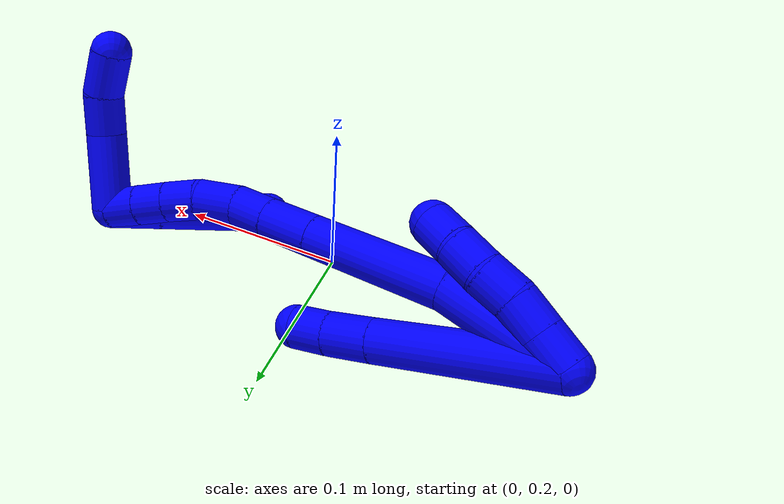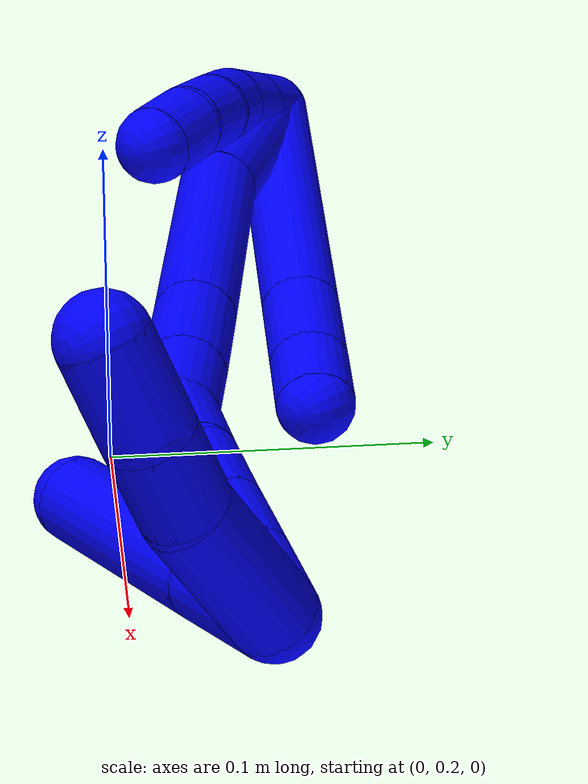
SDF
<sdf version="1.7">
 <world name="default">
  <model name="1">
   <static>0</static>
   <link name="1">
    <collision name="collision-cylinder-e_1_2_8">
     <pose>0.039856 -0.010253 -0.030038 2.81266 0.898281 2.47837</pose>
     <geometry><cylinder><radius>0.0125</radius><length>0.1019</length></cylinder></geometry>
     <surface>
      <friction><ode><mu>1.16</mu><mu2>1.16</mu2><slip1>0</slip1><slip2>0</slip2></ode></friction>
      <contact><ode><kp>1e+06</kp><kd>1</kd><max_vel>0</max_vel><min_depth>0.001</min_depth></ode></contact>
     </surface>
    </collision>
    <visual name="visual-cylinder-e_1_2_8">
     <pose>0.039856 -0.010253 -0.030038 2.81266 0.898281 2.47837</pose>
     <geometry><cylinder><radius>0.0125</radius><length>0.1019</length></cylinder></geometry>
     <material><ambient>0 0 1 1</ambient></material>
    </visual>
    <collision name="collision-cylinder-e_2_8_9">
     <pose>0.090175 -0.023431 -0.068098 2.79196 0.886331 2.42915</pose>
     <geometry><cylinder><radius>0.0125</radius><length>0.027009</length></cylinder></geometry>
     <surface>
      <friction><ode><mu>1.16</mu><mu2>1.16</mu2><slip1>0</slip1><slip2>0</slip2></ode></friction>
      <contact><ode><kp>1e+06</kp><kd>1</kd><max_vel>0</max_vel><min_depth>0.001</min_depth></ode></contact>
     </surface>
    </collision>
    <visual name="visual-cylinder-e_2_8_9">
     <pose>0.090175 -0.023431 -0.068098 2.79196 0.886331 2.42915</pose>
     <geometry><cylinder><radius>0.0125</radius><length>0.027009</length></cylinder></geometry>
     <material><ambient>0 0 1 1</ambient></material>
    </visual>
    <collision name="collision-cylinder-e_3_9_6">
     <pose>0.10848 -0.029198 -0.082572 2.72666 0.838524 2.25911</pose>
     <geometry><cylinder><radius>0.0125</radius><length>0.021091</length></cylinder></geometry>
     <surface>
      <friction><ode><mu>1.16</mu><mu2>1.16</mu2><slip1>0</slip1><slip2>0</slip2></ode></friction>
      <contact><ode><kp>1e+06</kp><kd>1</kd><max_vel>0</max_vel><min_depth>0.001</min_depth></ode></contact>
     </surface>
    </collision>
    <visual name="visual-cylinder-e_3_9_6">
     <pose>0.10848 -0.029198 -0.082572 2.72666 0.838524 2.25911</pose>
     <geometry><cylinder><radius>0.0125</radius><length>0.021091</length></cylinder></geometry>
     <material><ambient>0 0 1 1</ambient></material>
    </visual>
    <collision name="collision-cylinder-e_1_2_10">
     <pose>0.000831 -0.005273 -0.008456 2.58401 0.083176 0.288722</pose>
     <geometry><cylinder><radius>0.0125</radius><length>0.02</length></cylinder></geometry>
     <surface>
      <friction><ode><mu>1.16</mu><mu2>1.16</mu2><slip1>0</slip1><slip2>0</slip2></ode></friction>
      <contact><ode><kp>1e+06</kp><kd>1</kd><max_vel>0</max_vel><min_depth>0.001</min_depth></ode></contact>
     </surface>
    </collision>
    <visual name="visual-cylinder-e_1_2_10">
     <pose>0.000831 -0.005273 -0.008456 2.58401 0.083176 0.288722</pose>
     <geometry><cylinder><radius>0.0125</radius><length>0.02</length></cylinder></geometry>
     <material><ambient>0 0 1 1</ambient></material>
    </visual>
    <collision name="collision-cylinder-e_2_10_11">
     <pose>0.002433 -0.015862 -0.025347 2.5792 0.077188 0.265785</pose>
     <geometry><cylinder><radius>0.0125</radius><length>0.02</length></cylinder></geometry>
     <surface>
      <friction><ode><mu>1.16</mu><mu2>1.16</mu2><slip1>0</slip1><slip2>0</slip2></ode></friction>
      <contact><ode><kp>1e+06</kp><kd>1</kd><max_vel>0</max_vel><min_depth>0.001</min_depth></ode></contact>
     </surface>
    </collision>
    <visual name="visual-cylinder-e_2_10_11">
     <pose>0.002433 -0.015862 -0.025347 2.5792 0.077188 0.265785</pose>
     <geometry><cylinder><radius>0.0125</radius><length>0.02</length></cylinder></geometry>
     <material><ambient>0 0 1 1</ambient></material>
    </visual>
    <collision name="collision-cylinder-e_3_11_12">
     <pose>0.005907 -0.026159 -0.042021 2.59793 0.273745 0.91791</pose>
     <geometry><cylinder><radius>0.0125</radius><length>0.02</length></cylinder></geometry>
     <surface>
      <friction><ode><mu>1.16</mu><mu2>1.16</mu2><slip1>0</slip1><slip2>0</slip2></ode></friction>
      <contact><ode><kp>1e+06</kp><kd>1</kd><max_vel>0</max_vel><min_depth>0.001</min_depth></ode></contact>
     </surface>
    </collision>
    <visual name="visual-cylinder-e_3_11_12">
     <pose>0.005907 -0.026159 -0.042021 2.59793 0.273745 0.91791</pose>
     <geometry><cylinder><radius>0.0125</radius><length>0.02</length></cylinder></geometry>
     <material><ambient>0 0 1 1</ambient></material>
    </visual>
    <collision name="collision-cylinder-e_4_12_13">
     <pose>0.010913 -0.034631 -0.059344 2.77456 0.232372 1.12267</pose>
     <geometry><cylinder><radius>0.0125</radius><length>0.02</length></cylinder></geometry>
     <surface>
      <friction><ode><mu>1.16</mu><mu2>1.16</mu2><slip1>0</slip1><slip2>0</slip2></ode></friction>
      <contact><ode><kp>1e+06</kp><kd>1</kd><max_vel>0</max_vel><min_depth>0.001</min_depth></ode></contact>
     </surface>
    </collision>
    <visual name="visual-cylinder-e_4_12_13">
     <pose>0.010913 -0.034631 -0.059344 2.77456 0.232372 1.12267</pose>
     <geometry><cylinder><radius>0.0125</radius><length>0.02</length></cylinder></geometry>
     <material><ambient>0 0 1 1</ambient></material>
    </visual>
    <collision name="collision-cylinder-e_5_13_5">
     <pose>0.015724 -0.039882 -0.077946 2.95891 0.253521 1.89521</pose>
     <geometry><cylinder><radius>0.0125</radius><length>0.02</length></cylinder></geometry>
     <surface>
      <friction><ode><mu>1.16</mu><mu2>1.16</mu2><slip1>0</slip1><slip2>0</slip2></ode></friction>
      <contact><ode><kp>1e+06</kp><kd>1</kd><max_vel>0</max_vel><min_depth>0.001</min_depth></ode></contact>
     </surface>
    </collision>
    <visual name="visual-cylinder-e_5_13_5">
     <pose>0.015724 -0.039882 -0.077946 2.95891 0.253521 1.89521</pose>
     <geometry><cylinder><radius>0.0125</radius><length>0.02</length></cylinder></geometry>
     <material><ambient>0 0 1 1</ambient></material>
    </visual>
    <collision name="collision-cylinder-e_1_2_14">
     <pose>0.015461 -0.011699 -0.030374 2.77393 0.443437 1.76223</pose>
     <geometry><cylinder><radius>0.0125</radius><length>0.072069</length></cylinder></geometry>
     <surface>
      <friction><ode><mu>1.16</mu><mu2>1.16</mu2><slip1>0</slip1><slip2>0</slip2></ode></friction>
      <contact><ode><kp>1e+06</kp><kd>1</kd><max_vel>0</max_vel><min_depth>0.001</min_depth></ode></contact>
     </surface>
    </collision>
    <visual name="visual-cylinder-e_1_2_14">
     <pose>0.015461 -0.011699 -0.030374 2.77393 0.443437 1.76223</pose>
     <geometry><cylinder><radius>0.0125</radius><length>0.072069</length></cylinder></geometry>
     <material><ambient>0 0 1 1</ambient></material>
    </visual>
    <collision name="collision-cylinder-e_2_14_15">
     <pose>0.056139 -0.037064 -0.091601 2.72463 0.641791 2.00797</pose>
     <geometry><cylinder><radius>0.0125</radius><length>0.08425</length></cylinder></geometry>
     <surface>
      <friction><ode><mu>1.16</mu><mu2>1.16</mu2><slip1>0</slip1><slip2>0</slip2></ode></friction>
      <contact><ode><kp>1e+06</kp><kd>1</kd><max_vel>0</max_vel><min_depth>0.001</min_depth></ode></contact>
     </surface>
    </collision>
    <visual name="visual-cylinder-e_2_14_15">
     <pose>0.056139 -0.037064 -0.091601 2.72463 0.641791 2.00797</pose>
     <geometry><cylinder><radius>0.0125</radius><length>0.08425</length></cylinder></geometry>
     <material><ambient>0 0 1 1</ambient></material>
    </visual>
    <collision name="collision-cylinder-e_3_15_16">
     <pose>0.090886 -0.055781 -0.134206 2.73572 0.640292 2.03071</pose>
     <geometry><cylinder><radius>0.0125</radius><length>0.031904</length></cylinder></geometry>
     <surface>
      <friction><ode><mu>1.16</mu><mu2>1.16</mu2><slip1>0</slip1><slip2>0</slip2></ode></friction>
      <contact><ode><kp>1e+06</kp><kd>1</kd><max_vel>0</max_vel><min_depth>0.001</min_depth></ode></contact>
     </surface>
    </collision>
    <visual name="visual-cylinder-e_3_15_16">
     <pose>0.090886 -0.055781 -0.134206 2.73572 0.640292 2.03071</pose>
     <geometry><cylinder><radius>0.0125</radius><length>0.031904</length></cylinder></geometry>
     <material><ambient>0 0 1 1</ambient></material>
    </visual>
    <collision name="collision-cylinder-e_4_16_17">
     <pose>0.107459 -0.064747 -0.154901 2.72882 0.624962 1.99156</pose>
     <geometry><cylinder><radius>0.0125</radius><length>0.024073</length></cylinder></geometry>
     <surface>
      <friction><ode><mu>1.16</mu><mu2>1.16</mu2><slip1>0</slip1><slip2>0</slip2></ode></friction>
      <contact><ode><kp>1e+06</kp><kd>1</kd><max_vel>0</max_vel><min_depth>0.001</min_depth></ode></contact>
     </surface>
    </collision>
    <visual name="visual-cylinder-e_4_16_17">
     <pose>0.107459 -0.064747 -0.154901 2.72882 0.624962 1.99156</pose>
     <geometry><cylinder><radius>0.0125</radius><length>0.024073</length></cylinder></geometry>
     <material><ambient>0 0 1 1</ambient></material>
    </visual>
    <collision name="collision-cylinder-e_5_17_18">
     <pose>0.123925 -0.074784 -0.170274 2.38088 0.81521 1.64762</pose>
     <geometry><cylinder><radius>0.0125</radius><length>0.025895</length></cylinder></geometry>
     <surface>
      <friction><ode><mu>1.16</mu><mu2>1.16</mu2><slip1>0</slip1><slip2>0</slip2></ode></friction>
      <contact><ode><kp>1e+06</kp><kd>1</kd><max_vel>0</max_vel><min_depth>0.001</min_depth></ode></contact>
     </surface>
    </collision>
    <visual name="visual-cylinder-e_5_17_18">
     <pose>0.123925 -0.074784 -0.170274 2.38088 0.81521 1.64762</pose>
     <geometry><cylinder><radius>0.0125</radius><length>0.025895</length></cylinder></geometry>
     <material><ambient>0 0 1 1</ambient></material>
    </visual>
    <collision name="collision-cylinder-e_6_18_19">
     <pose>0.142647 -0.084392 -0.180827 2.43949 1.04462 2.00836</pose>
     <geometry><cylinder><radius>0.0125</radius><length>0.021506</length></cylinder></geometry>
     <surface>
      <friction><ode><mu>1.16</mu><mu2>1.16</mu2><slip1>0</slip1><slip2>0</slip2></ode></friction>
      <contact><ode><kp>1e+06</kp><kd>1</kd><max_vel>0</max_vel><min_depth>0.001</min_depth></ode></contact>
     </surface>
    </collision>
    <visual name="visual-cylinder-e_6_18_19">
     <pose>0.142647 -0.084392 -0.180827 2.43949 1.04462 2.00836</pose>
     <geometry><cylinder><radius>0.0125</radius><length>0.021506</length></cylinder></geometry>
     <material><ambient>0 0 1 1</ambient></material>
    </visual>
    <collision name="collision-cylinder-e_7_19_20">
     <pose>0.16081 -0.091044 -0.188552 2.42083 1.07503 2.01406</pose>
     <geometry><cylinder><radius>0.0125</radius><length>0.020155</length></cylinder></geometry>
     <surface>
      <friction><ode><mu>1.16</mu><mu2>1.16</mu2><slip1>0</slip1><slip2>0</slip2></ode></friction>
      <contact><ode><kp>1e+06</kp><kd>1</kd><max_vel>0</max_vel><min_depth>0.001</min_depth></ode></contact>
     </surface>
    </collision>
    <visual name="visual-cylinder-e_7_19_20">
     <pose>0.16081 -0.091044 -0.188552 2.42083 1.07503 2.01406</pose>
     <geometry><cylinder><radius>0.0125</radius><length>0.020155</length></cylinder></geometry>
     <material><ambient>0 0 1 1</ambient></material>
    </visual>
    <collision name="collision-cylinder-e_8_20_1">
     <pose>0.178571 -0.097303 -0.195723 2.42705 1.08265 2.03034</pose>
     <geometry><cylinder><radius>0.0125</radius><length>0.020148</length></cylinder></geometry>
     <surface>
      <friction><ode><mu>1.16</mu><mu2>1.16</mu2><slip1>0</slip1><slip2>0</slip2></ode></friction>
      <contact><ode><kp>1e+06</kp><kd>1</kd><max_vel>0</max_vel><min_depth>0.001</min_depth></ode></contact>
     </surface>
    </collision>
    <visual name="visual-cylinder-e_8_20_1">
     <pose>0.178571 -0.097303 -0.195723 2.42705 1.08265 2.03034</pose>
     <geometry><cylinder><radius>0.0125</radius><length>0.020148</length></cylinder></geometry>
     <material><ambient>0 0 1 1</ambient></material>
    </visual>
    <collision name="collision-cylinder-e_1_1_21">
     <pose>0.175845 -0.090026 -0.197024 -1.35554 -0.830553 0.682123</pose>
     <geometry><cylinder><radius>0.0125</radius><length>0.031487</length></cylinder></geometry>
     <surface>
      <friction><ode><mu>1.16</mu><mu2>1.16</mu2><slip1>0</slip1><slip2>0</slip2></ode></friction>
      <contact><ode><kp>1e+06</kp><kd>1</kd><max_vel>0</max_vel><min_depth>0.001</min_depth></ode></contact>
     </surface>
    </collision>
    <visual name="visual-cylinder-e_1_1_21">
     <pose>0.175845 -0.090026 -0.197024 -1.35554 -0.830553 0.682123</pose>
     <geometry><cylinder><radius>0.0125</radius><length>0.031487</length></cylinder></geometry>
     <material><ambient>0 0 1 1</ambient></material>
    </visual>
    <collision name="collision-cylinder-e_2_21_4">
     <pose>0.13889 -0.057189 -0.189534 -1.34239 -0.832251 0.675103</pose>
     <geometry><cylinder><radius>0.0125</radius><length>0.068513</length></cylinder></geometry>
     <surface>
      <friction><ode><mu>1.16</mu><mu2>1.16</mu2><slip1>0</slip1><slip2>0</slip2></ode></friction>
      <contact><ode><kp>1e+06</kp><kd>1</kd><max_vel>0</max_vel><min_depth>0.001</min_depth></ode></contact>
     </surface>
    </collision>
    <visual name="visual-cylinder-e_2_21_4">
     <pose>0.13889 -0.057189 -0.189534 -1.34239 -0.832251 0.675103</pose>
     <geometry><cylinder><radius>0.0125</radius><length>0.068513</length></cylinder></geometry>
     <material><ambient>0 0 1 1</ambient></material>
    </visual>
    <collision name="collision-cylinder-e_1_1_22">
     <pose>0.174116 -0.115408 -0.212159 2.27956 -0.594014 -1.17447</pose>
     <geometry><cylinder><radius>0.0125</radius><length>0.047712</length></cylinder></geometry>
     <surface>
      <friction><ode><mu>1.16</mu><mu2>1.16</mu2><slip1>0</slip1><slip2>0</slip2></ode></friction>
      <contact><ode><kp>1e+06</kp><kd>1</kd><max_vel>0</max_vel><min_depth>0.001</min_depth></ode></contact>
     </surface>
    </collision>
    <visual name="visual-cylinder-e_1_1_22">
     <pose>0.174116 -0.115408 -0.212159 2.27956 -0.594014 -1.17447</pose>
     <geometry><cylinder><radius>0.0125</radius><length>0.047712</length></cylinder></geometry>
     <material><ambient>0 0 1 1</ambient></material>
    </visual>
    <collision name="collision-cylinder-e_2_22_23">
     <pose>0.152969 -0.139162 -0.229454 2.03939 -0.671785 -1.03316</pose>
     <geometry><cylinder><radius>0.0125</radius><length>0.025049</length></cylinder></geometry>
     <surface>
      <friction><ode><mu>1.16</mu><mu2>1.16</mu2><slip1>0</slip1><slip2>0</slip2></ode></friction>
      <contact><ode><kp>1e+06</kp><kd>1</kd><max_vel>0</max_vel><min_depth>0.001</min_depth></ode></contact>
     </surface>
    </collision>
    <visual name="visual-cylinder-e_2_22_23">
     <pose>0.152969 -0.139162 -0.229454 2.03939 -0.671785 -1.03316</pose>
     <geometry><cylinder><radius>0.0125</radius><length>0.025049</length></cylinder></geometry>
     <material><ambient>0 0 1 1</ambient></material>
    </visual>
    <collision name="collision-cylinder-e_3_23_3">
     <pose>0.134139 -0.155356 -0.236754 1.9389 -0.944623 -1.28006</pose>
     <geometry><cylinder><radius>0.0125</radius><length>0.027239</length></cylinder></geometry>
     <surface>
      <friction><ode><mu>1.16</mu><mu2>1.16</mu2><slip1>0</slip1><slip2>0</slip2></ode></friction>
      <contact><ode><kp>1e+06</kp><kd>1</kd><max_vel>0</max_vel><min_depth>0.001</min_depth></ode></contact>
     </surface>
    </collision>
    <visual name="visual-cylinder-e_3_23_3">
     <pose>0.134139 -0.155356 -0.236754 1.9389 -0.944623 -1.28006</pose>
     <geometry><cylinder><radius>0.0125</radius><length>0.027239</length></cylinder></geometry>
     <material><ambient>0 0 1 1</ambient></material>
    </visual>
    <collision name="collision-sphere-3">
     <pose>0.123103 -0.162803 -0.239626 0 -0 0</pose>
     <geometry><sphere><radius>0.0125</radius></sphere></geometry>
     <surface>
      <friction><ode><mu>1.16</mu><mu2>1.16</mu2><slip1>0</slip1><slip2>0</slip2></ode></friction>
      <contact><ode><kp>1e+06</kp><kd>1</kd><max_vel>0</max_vel><min_depth>0.001</min_depth></ode></contact>
     </surface>
    </collision>
    <visual name="visual-sphere-3">
     <pose>0.123103 -0.162803 -0.239626 0 -0 0</pose>
     <geometry><sphere><radius>0.0125</radius></sphere></geometry>
     <material><ambient>0 0 1 1</ambient></material>
    </visual>
    <collision name="collision-sphere-23">
     <pose>0.145174 -0.147909 -0.233882 0 -0 0</pose>
     <geometry><sphere><radius>0.0125</radius></sphere></geometry>
     <surface>
      <friction><ode><mu>1.16</mu><mu2>1.16</mu2><slip1>0</slip1><slip2>0</slip2></ode></friction>
      <contact><ode><kp>1e+06</kp><kd>1</kd><max_vel>0</max_vel><min_depth>0.001</min_depth></ode></contact>
     </surface>
    </collision>
    <visual name="visual-sphere-23">
     <pose>0.145174 -0.147909 -0.233882 0 -0 0</pose>
     <geometry><sphere><radius>0.0125</radius></sphere></geometry>
     <material><ambient>0 0 1 1</ambient></material>
    </visual>
    <collision name="collision-sphere-22">
     <pose>0.160765 -0.130416 -0.225027 0 -0 0</pose>
     <geometry><sphere><radius>0.0125</radius></sphere></geometry>
     <surface>
      <friction><ode><mu>1.16</mu><mu2>1.16</mu2><slip1>0</slip1><slip2>0</slip2></ode></friction>
      <contact><ode><kp>1e+06</kp><kd>1</kd><max_vel>0</max_vel><min_depth>0.001</min_depth></ode></contact>
     </surface>
    </collision>
    <visual name="visual-sphere-22">
     <pose>0.160765 -0.130416 -0.225027 0 -0 0</pose>
     <geometry><sphere><radius>0.0125</radius></sphere></geometry>
     <material><ambient>0 0 1 1</ambient></material>
    </visual>
    <collision name="collision-sphere-4">
     <pose>0.11356 -0.034726 -0.184312 0 -0 0</pose>
     <geometry><sphere><radius>0.0125</radius></sphere></geometry>
     <surface>
      <friction><ode><mu>1.16</mu><mu2>1.16</mu2><slip1>0</slip1><slip2>0</slip2></ode></friction>
      <contact><ode><kp>1e+06</kp><kd>1</kd><max_vel>0</max_vel><min_depth>0.001</min_depth></ode></contact>
     </surface>
    </collision>
    <visual name="visual-sphere-4">
     <pose>0.11356 -0.034726 -0.184312 0 -0 0</pose>
     <geometry><sphere><radius>0.0125</radius></sphere></geometry>
     <material><ambient>0 0 1 1</ambient></material>
    </visual>
    <collision name="collision-sphere-21">
     <pose>0.164221 -0.079652 -0.194755 0 -0 0</pose>
     <geometry><sphere><radius>0.0125</radius></sphere></geometry>
     <surface>
      <friction><ode><mu>1.16</mu><mu2>1.16</mu2><slip1>0</slip1><slip2>0</slip2></ode></friction>
      <contact><ode><kp>1e+06</kp><kd>1</kd><max_vel>0</max_vel><min_depth>0.001</min_depth></ode></contact>
     </surface>
    </collision>
    <visual name="visual-sphere-21">
     <pose>0.164221 -0.079652 -0.194755 0 -0 0</pose>
     <geometry><sphere><radius>0.0125</radius></sphere></geometry>
     <material><ambient>0 0 1 1</ambient></material>
    </visual>
    <collision name="collision-sphere-1">
     <pose>0.187468 -0.100399 -0.199292 0 -0 0</pose>
     <geometry><sphere><radius>0.0125</radius></sphere></geometry>
     <surface>
      <friction><ode><mu>1.16</mu><mu2>1.16</mu2><slip1>0</slip1><slip2>0</slip2></ode></friction>
      <contact><ode><kp>1e+06</kp><kd>1</kd><max_vel>0</max_vel><min_depth>0.001</min_depth></ode></contact>
     </surface>
    </collision>
    <visual name="visual-sphere-1">
     <pose>0.187468 -0.100399 -0.199292 0 -0 0</pose>
     <geometry><sphere><radius>0.0125</radius></sphere></geometry>
     <material><ambient>0 0 1 1</ambient></material>
    </visual>
    <collision name="collision-sphere-11">
     <pose>0.003204 -0.021179 -0.033781 0 -0 0</pose>
     <geometry><sphere><radius>0.0125</radius></sphere></geometry>
     <surface>
      <friction><ode><mu>1.16</mu><mu2>1.16</mu2><slip1>0</slip1><slip2>0</slip2></ode></friction>
      <contact><ode><kp>1e+06</kp><kd>1</kd><max_vel>0</max_vel><min_depth>0.001</min_depth></ode></contact>
     </surface>
    </collision>
    <visual name="visual-sphere-11">
     <pose>0.003204 -0.021179 -0.033781 0 -0 0</pose>
     <geometry><sphere><radius>0.0125</radius></sphere></geometry>
     <material><ambient>0 0 1 1</ambient></material>
    </visual>
    <collision name="collision-sphere-10">
     <pose>0.001662 -0.010546 -0.016912 0 -0 0</pose>
     <geometry><sphere><radius>0.0125</radius></sphere></geometry>
     <surface>
      <friction><ode><mu>1.16</mu><mu2>1.16</mu2><slip1>0</slip1><slip2>0</slip2></ode></friction>
      <contact><ode><kp>1e+06</kp><kd>1</kd><max_vel>0</max_vel><min_depth>0.001</min_depth></ode></contact>
     </surface>
    </collision>
    <visual name="visual-sphere-10">
     <pose>0.001662 -0.010546 -0.016912 0 -0 0</pose>
     <geometry><sphere><radius>0.0125</radius></sphere></geometry>
     <material><ambient>0 0 1 1</ambient></material>
    </visual>
    <collision name="collision-sphere-6">
     <pose>0.116322 -0.03204 -0.089024 0 -0 0</pose>
     <geometry><sphere><radius>0.0125</radius></sphere></geometry>
     <surface>
      <friction><ode><mu>1.16</mu><mu2>1.16</mu2><slip1>0</slip1><slip2>0</slip2></ode></friction>
      <contact><ode><kp>1e+06</kp><kd>1</kd><max_vel>0</max_vel><min_depth>0.001</min_depth></ode></contact>
     </surface>
    </collision>
    <visual name="visual-sphere-6">
     <pose>0.116322 -0.03204 -0.089024 0 -0 0</pose>
     <geometry><sphere><radius>0.0125</radius></sphere></geometry>
     <material><ambient>0 0 1 1</ambient></material>
    </visual>
    <collision name="collision-sphere-9">
     <pose>0.100637 -0.026355 -0.076119 0 -0 0</pose>
     <geometry><sphere><radius>0.0125</radius></sphere></geometry>
     <surface>
      <friction><ode><mu>1.16</mu><mu2>1.16</mu2><slip1>0</slip1><slip2>0</slip2></ode></friction>
      <contact><ode><kp>1e+06</kp><kd>1</kd><max_vel>0</max_vel><min_depth>0.001</min_depth></ode></contact>
     </surface>
    </collision>
    <visual name="visual-sphere-9">
     <pose>0.100637 -0.026355 -0.076119 0 -0 0</pose>
     <geometry><sphere><radius>0.0125</radius></sphere></geometry>
     <material><ambient>0 0 1 1</ambient></material>
    </visual>
    <collision name="collision-sphere-2">
     <geometry><sphere><radius>0.0125</radius></sphere></geometry>
     <surface>
      <friction><ode><mu>1.16</mu><mu2>1.16</mu2><slip1>0</slip1><slip2>0</slip2></ode></friction>
      <contact><ode><kp>1e+06</kp><kd>1</kd><max_vel>0</max_vel><min_depth>0.001</min_depth></ode></contact>
     </surface>
    </collision>
    <visual name="visual-sphere-2">
     <geometry><sphere><radius>0.0125</radius></sphere></geometry>
     <material><ambient>0 0 1 1</ambient></material>
    </visual>
    <collision name="collision-sphere-19">
     <pose>0.151946 -0.08788 -0.184951 0 -0 0</pose>
     <geometry><sphere><radius>0.0125</radius></sphere></geometry>
     <surface>
      <friction><ode><mu>1.16</mu><mu2>1.16</mu2><slip1>0</slip1><slip2>0</slip2></ode></friction>
      <contact><ode><kp>1e+06</kp><kd>1</kd><max_vel>0</max_vel><min_depth>0.001</min_depth></ode></contact>
     </surface>
    </collision>
    <visual name="visual-sphere-19">
     <pose>0.151946 -0.08788 -0.184951 0 -0 0</pose>
     <geometry><sphere><radius>0.0125</radius></sphere></geometry>
     <material><ambient>0 0 1 1</ambient></material>
    </visual>
    <collision name="collision-sphere-8">
     <pose>0.079712 -0.020506 -0.060076 0 -0 0</pose>
     <geometry><sphere><radius>0.0125</radius></sphere></geometry>
     <surface>
      <friction><ode><mu>1.16</mu><mu2>1.16</mu2><slip1>0</slip1><slip2>0</slip2></ode></friction>
      <contact><ode><kp>1e+06</kp><kd>1</kd><max_vel>0</max_vel><min_depth>0.001</min_depth></ode></contact>
     </surface>
    </collision>
    <visual name="visual-sphere-8">
     <pose>0.079712 -0.020506 -0.060076 0 -0 0</pose>
     <geometry><sphere><radius>0.0125</radius></sphere></geometry>
     <material><ambient>0 0 1 1</ambient></material>
    </visual>
    <collision name="collision-sphere-12">
     <pose>0.008611 -0.031139 -0.050261 0 -0 0</pose>
     <geometry><sphere><radius>0.0125</radius></sphere></geometry>
     <surface>
      <friction><ode><mu>1.16</mu><mu2>1.16</mu2><slip1>0</slip1><slip2>0</slip2></ode></friction>
      <contact><ode><kp>1e+06</kp><kd>1</kd><max_vel>0</max_vel><min_depth>0.001</min_depth></ode></contact>
     </surface>
    </collision>
    <visual name="visual-sphere-12">
     <pose>0.008611 -0.031139 -0.050261 0 -0 0</pose>
     <geometry><sphere><radius>0.0125</radius></sphere></geometry>
     <material><ambient>0 0 1 1</ambient></material>
    </visual>
    <collision name="collision-sphere-13">
     <pose>0.013216 -0.038123 -0.068427 0 -0 0</pose>
     <geometry><sphere><radius>0.0125</radius></sphere></geometry>
     <surface>
      <friction><ode><mu>1.16</mu><mu2>1.16</mu2><slip1>0</slip1><slip2>0</slip2></ode></friction>
      <contact><ode><kp>1e+06</kp><kd>1</kd><max_vel>0</max_vel><min_depth>0.001</min_depth></ode></contact>
     </surface>
    </collision>
    <visual name="visual-sphere-13">
     <pose>0.013216 -0.038123 -0.068427 0 -0 0</pose>
     <geometry><sphere><radius>0.0125</radius></sphere></geometry>
     <material><ambient>0 0 1 1</ambient></material>
    </visual>
    <collision name="collision-sphere-5">
     <pose>0.018233 -0.04164 -0.087465 0 -0 0</pose>
     <geometry><sphere><radius>0.0125</radius></sphere></geometry>
     <surface>
      <friction><ode><mu>1.16</mu><mu2>1.16</mu2><slip1>0</slip1><slip2>0</slip2></ode></friction>
      <contact><ode><kp>1e+06</kp><kd>1</kd><max_vel>0</max_vel><min_depth>0.001</min_depth></ode></contact>
     </surface>
    </collision>
    <visual name="visual-sphere-5">
     <pose>0.018233 -0.04164 -0.087465 0 -0 0</pose>
     <geometry><sphere><radius>0.0125</radius></sphere></geometry>
     <material><ambient>0 0 1 1</ambient></material>
    </visual>
    <collision name="collision-sphere-14">
     <pose>0.030921 -0.023399 -0.060748 0 -0 0</pose>
     <geometry><sphere><radius>0.0125</radius></sphere></geometry>
     <surface>
      <friction><ode><mu>1.16</mu><mu2>1.16</mu2><slip1>0</slip1><slip2>0</slip2></ode></friction>
      <contact><ode><kp>1e+06</kp><kd>1</kd><max_vel>0</max_vel><min_depth>0.001</min_depth></ode></contact>
     </surface>
    </collision>
    <visual name="visual-sphere-14">
     <pose>0.030921 -0.023399 -0.060748 0 -0 0</pose>
     <geometry><sphere><radius>0.0125</radius></sphere></geometry>
     <material><ambient>0 0 1 1</ambient></material>
    </visual>
    <collision name="collision-sphere-15">
     <pose>0.081356 -0.05073 -0.122453 0 -0 0</pose>
     <geometry><sphere><radius>0.0125</radius></sphere></geometry>
     <surface>
      <friction><ode><mu>1.16</mu><mu2>1.16</mu2><slip1>0</slip1><slip2>0</slip2></ode></friction>
      <contact><ode><kp>1e+06</kp><kd>1</kd><max_vel>0</max_vel><min_depth>0.001</min_depth></ode></contact>
     </surface>
    </collision>
    <visual name="visual-sphere-15">
     <pose>0.081356 -0.05073 -0.122453 0 -0 0</pose>
     <geometry><sphere><radius>0.0125</radius></sphere></geometry>
     <material><ambient>0 0 1 1</ambient></material>
    </visual>
    <collision name="collision-sphere-16">
     <pose>0.100417 -0.060831 -0.145959 0 -0 0</pose>
     <geometry><sphere><radius>0.0125</radius></sphere></geometry>
     <surface>
      <friction><ode><mu>1.16</mu><mu2>1.16</mu2><slip1>0</slip1><slip2>0</slip2></ode></friction>
      <contact><ode><kp>1e+06</kp><kd>1</kd><max_vel>0</max_vel><min_depth>0.001</min_depth></ode></contact>
     </surface>
    </collision>
    <visual name="visual-sphere-16">
     <pose>0.100417 -0.060831 -0.145959 0 -0 0</pose>
     <geometry><sphere><radius>0.0125</radius></sphere></geometry>
     <material><ambient>0 0 1 1</ambient></material>
    </visual>
    <collision name="collision-sphere-17">
     <pose>0.114501 -0.068663 -0.163843 0 -0 0</pose>
     <geometry><sphere><radius>0.0125</radius></sphere></geometry>
     <surface>
      <friction><ode><mu>1.16</mu><mu2>1.16</mu2><slip1>0</slip1><slip2>0</slip2></ode></friction>
      <contact><ode><kp>1e+06</kp><kd>1</kd><max_vel>0</max_vel><min_depth>0.001</min_depth></ode></contact>
     </surface>
    </collision>
    <visual name="visual-sphere-17">
     <pose>0.114501 -0.068663 -0.163843 0 -0 0</pose>
     <geometry><sphere><radius>0.0125</radius></sphere></geometry>
     <material><ambient>0 0 1 1</ambient></material>
    </visual>
    <collision name="collision-sphere-18">
     <pose>0.133349 -0.080905 -0.176704 0 -0 0</pose>
     <geometry><sphere><radius>0.0125</radius></sphere></geometry>
     <surface>
      <friction><ode><mu>1.16</mu><mu2>1.16</mu2><slip1>0</slip1><slip2>0</slip2></ode></friction>
      <contact><ode><kp>1e+06</kp><kd>1</kd><max_vel>0</max_vel><min_depth>0.001</min_depth></ode></contact>
     </surface>
    </collision>
    <visual name="visual-sphere-18">
     <pose>0.133349 -0.080905 -0.176704 0 -0 0</pose>
     <geometry><sphere><radius>0.0125</radius></sphere></geometry>
     <material><ambient>0 0 1 1</ambient></material>
    </visual>
    <collision name="collision-sphere-20">
     <pose>0.169674 -0.094208 -0.192154 0 -0 0</pose>
     <geometry><sphere><radius>0.0125</radius></sphere></geometry>
     <surface>
      <friction><ode><mu>1.16</mu><mu2>1.16</mu2><slip1>0</slip1><slip2>0</slip2></ode></friction>
      <contact><ode><kp>1e+06</kp><kd>1</kd><max_vel>0</max_vel><min_depth>0.001</min_depth></ode></contact>
     </surface>
    </collision>
    <visual name="visual-sphere-20">
     <pose>0.169674 -0.094208 -0.192154 0 -0 0</pose>
     <geometry><sphere><radius>0.0125</radius></sphere></geometry>
     <material><ambient>0 0 1 1</ambient></material>
    </visual>
    <inertial>
     <pose>0.08639 -0.052743 -0.115161 0 -0 0</pose>
     <mass>0.75</mass>
     <inertia>
      <ixx>8.7e-05</ixx>
      <ixy>0</ixy>
      <ixz>0</ixz>
      <iyy>0.000269</iyy>
      <iyz>0</iyz>
      <izz>-8.6e-05</izz>
     </inertia>
    </inertial>
   </link>
   <pose>-0.149402 0.264881 0.058401 -1.52775 0.640401 0.680712</pose>
  </model>
 </world>
</sdf>
